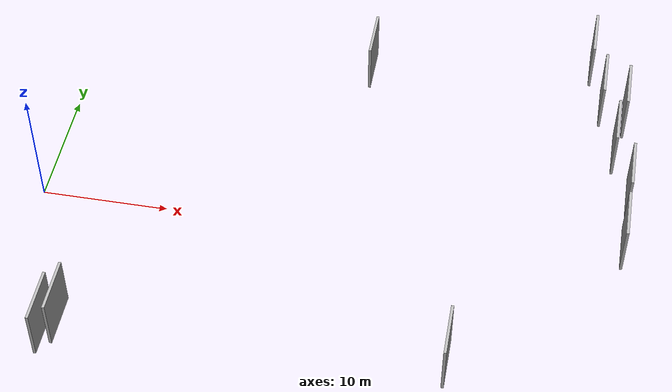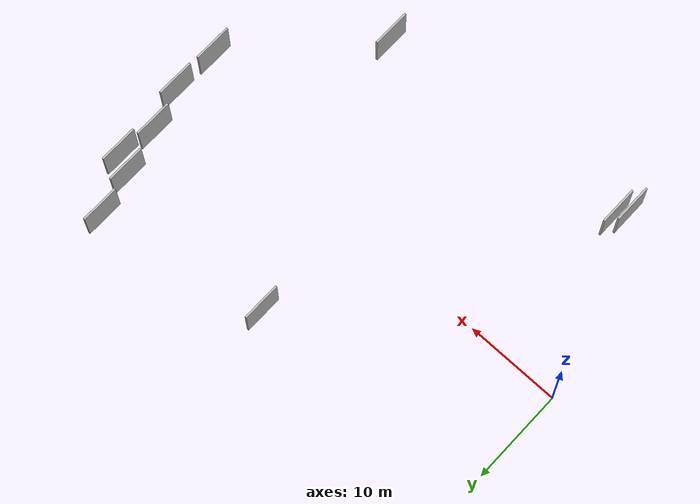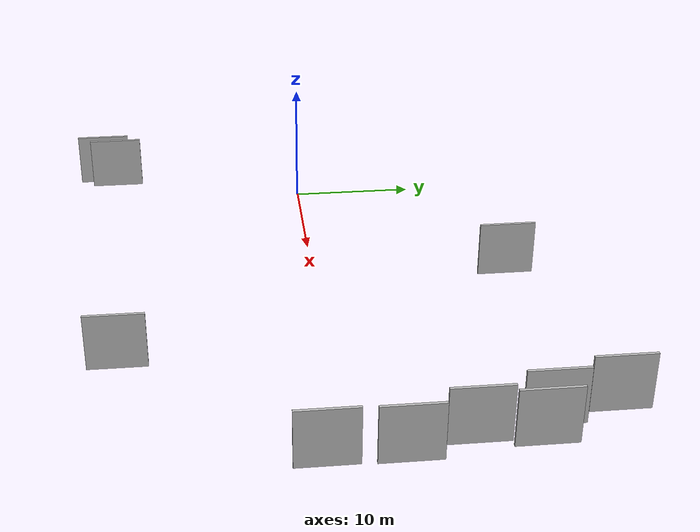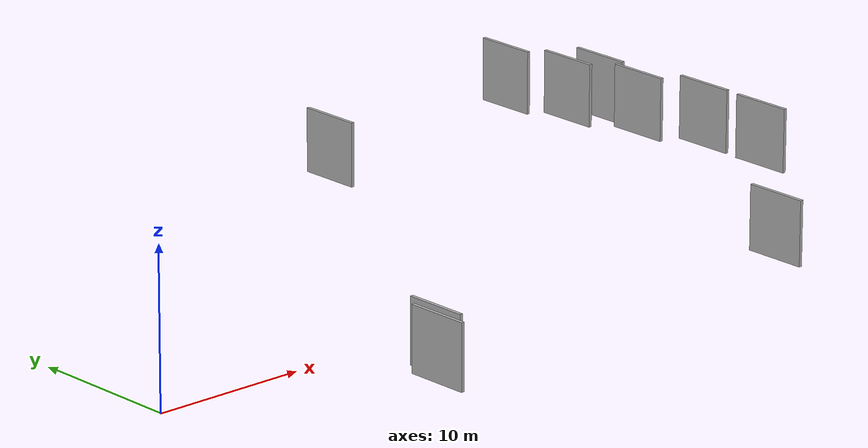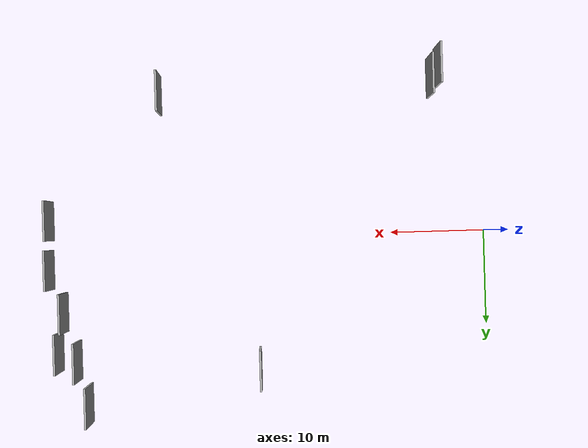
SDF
<sdf version="1.6">
 <world name="default">
  <scene>
   <sky><clouds><speed>12</speed></clouds></sky>
   <ambient>0.4 0.4 0.4 1</ambient>
   <background>0.7 0.7 0.7 1</background>
   <shadows>1</shadows>
  </scene>
  <gravity>0 0 -9.8066</gravity>
  <magnetic_field>6e-06 2.3e-05 -4.2e-05</magnetic_field>
  <physics default="0" name="default_physics" type="ode">
   <ode>
    <solver>
     <type>quick</type>
     <iters>10</iters>
     <sor>1.0</sor>
     <use_dynamic_moi_rescaling>0</use_dynamic_moi_rescaling>
    </solver>
    <constraints>
     <cfm>0</cfm>
     <erp>0.2</erp>
     <contact_max_correcting_vel>100</contact_max_correcting_vel>
     <contact_surface_layer>0.001</contact_surface_layer>
    </constraints>
   </ode>
   <max_step_size>0.004</max_step_size>
   <real_time_factor>1</real_time_factor>
   <real_time_update_rate>250</real_time_update_rate>
  </physics>
  <light name="sun" type="directional">
   <pose>0 0 10 0 0 0</pose>
   <diffuse>0.8 0.8 0.8 1</diffuse>
   <specular>0.2 0.2 0.2 1</specular>
   <attenuation>
    <range>1000</range>
    <constant>0.9</constant>
    <linear>0.01</linear>
    <quadratic>0.001</quadratic>
   </attenuation>
   <direction>-0.5 0.1 -0.9</direction>
  </light>
  <model name="grey_wall_1">
   <static>1</static>
   <pose>24.2069 13.2059 5.0 0.000000 0.000000 1.570796</pose>
   <link name="link">
    <pose>0 0 2.00 0 0 0</pose>
    <collision name="collision"><geometry><box><size>4.00 0.2 4.00</size></box></geometry></collision>
    <visual name="visual">
     <cast_shadows>0</cast_shadows>
     <geometry><box><size>4.00 0.2 4.00</size></box></geometry>
     <material>
      <script>
       <uri>model://HANNAS_wall/materials/scripts</uri>
       <uri>model://HANNAS_wall/materials/textures</uri>
       <name>vrc/HANNAS_wall</name>
      </script>
     </material>
    </visual>
   </link>
  </model>
  <model name="grey_wall_2">
   <static>1</static>
   <pose>42.4949 12.0493 5.0 0.000000 0.000000 1.570796</pose>
   <link name="link">
    <pose>0 0 2.00 0 0 0</pose>
    <collision name="collision"><geometry><box><size>4.00 0.2 4.00</size></box></geometry></collision>
    <visual name="visual">
     <cast_shadows>0</cast_shadows>
     <geometry><box><size>4.00 0.2 4.00</size></box></geometry>
     <material>
      <script>
       <uri>model://HANNAS_wall/materials/scripts</uri>
       <uri>model://HANNAS_wall/materials/textures</uri>
       <name>vrc/HANNAS_wall</name>
      </script>
     </material>
    </visual>
   </link>
  </model>
  <model name="grey_wall_3">
   <static>1</static>
   <pose>45.0876 2.8591 5.0 0.000000 0.000000 1.570796</pose>
   <link name="link">
    <pose>0 0 2.00 0 0 0</pose>
    <collision name="collision"><geometry><box><size>4.00 0.2 4.00</size></box></geometry></collision>
    <visual name="visual">
     <cast_shadows>0</cast_shadows>
     <geometry><box><size>4.00 0.2 4.00</size></box></geometry>
     <material>
      <script>
       <uri>model://HANNAS_wall/materials/scripts</uri>
       <uri>model://HANNAS_wall/materials/textures</uri>
       <name>vrc/HANNAS_wall</name>
      </script>
     </material>
    </visual>
   </link>
  </model>
  <model name="grey_wall_4">
   <static>1</static>
   <pose>5.7415 -16.5426 5.0 0.000000 0.000000 1.570796</pose>
   <link name="link">
    <pose>0 0 2.00 0 0 0</pose>
    <collision name="collision"><geometry><box><size>4.00 0.2 4.00</size></box></geometry></collision>
    <visual name="visual">
     <cast_shadows>0</cast_shadows>
     <geometry><box><size>4.00 0.2 4.00</size></box></geometry>
     <material>
      <script>
       <uri>model://HANNAS_wall/materials/scripts</uri>
       <uri>model://HANNAS_wall/materials/textures</uri>
       <name>vrc/HANNAS_wall</name>
      </script>
     </material>
    </visual>
   </link>
  </model>
  <model name="grey_wall_5">
   <static>1</static>
   <pose>45.0023 -2.0515 5.0 0.000000 0.000000 1.570796</pose>
   <link name="link">
    <pose>0 0 2.00 0 0 0</pose>
    <collision name="collision"><geometry><box><size>4.00 0.2 4.00</size></box></geometry></collision>
    <visual name="visual">
     <cast_shadows>0</cast_shadows>
     <geometry><box><size>4.00 0.2 4.00</size></box></geometry>
     <material>
      <script>
       <uri>model://HANNAS_wall/materials/scripts</uri>
       <uri>model://HANNAS_wall/materials/textures</uri>
       <name>vrc/HANNAS_wall</name>
      </script>
     </material>
    </visual>
   </link>
  </model>
  <model name="grey_wall_6">
   <static>1</static>
   <pose>41.4493 16.4476 5.0 0.000000 0.000000 1.570796</pose>
   <link name="link">
    <pose>0 0 2.00 0 0 0</pose>
    <collision name="collision"><geometry><box><size>4.00 0.2 4.00</size></box></geometry></collision>
    <visual name="visual">
     <cast_shadows>0</cast_shadows>
     <geometry><box><size>4.00 0.2 4.00</size></box></geometry>
     <material>
      <script>
       <uri>model://HANNAS_wall/materials/scripts</uri>
       <uri>model://HANNAS_wall/materials/textures</uri>
       <name>vrc/HANNAS_wall</name>
      </script>
     </material>
    </visual>
   </link>
  </model>
  <model name="grey_wall_7">
   <static>1</static>
   <pose>44.3408 11.1224 5.0 0.000000 0.000000 1.570796</pose>
   <link name="link">
    <pose>0 0 2.00 0 0 0</pose>
    <collision name="collision"><geometry><box><size>4.00 0.2 4.00</size></box></geometry></collision>
    <visual name="visual">
     <cast_shadows>0</cast_shadows>
     <geometry><box><size>4.00 0.2 4.00</size></box></geometry>
     <material>
      <script>
       <uri>model://HANNAS_wall/materials/scripts</uri>
       <uri>model://HANNAS_wall/materials/textures</uri>
       <name>vrc/HANNAS_wall</name>
      </script>
     </material>
    </visual>
   </link>
  </model>
  <model name="grey_wall_8">
   <static>1</static>
   <pose>43.7683 7.1631 5.0 0.000000 0.000000 1.570796</pose>
   <link name="link">
    <pose>0 0 2.00 0 0 0</pose>
    <collision name="collision"><geometry><box><size>4.00 0.2 4.00</size></box></geometry></collision>
    <visual name="visual">
     <cast_shadows>0</cast_shadows>
     <geometry><box><size>4.00 0.2 4.00</size></box></geometry>
     <material>
      <script>
       <uri>model://HANNAS_wall/materials/scripts</uri>
       <uri>model://HANNAS_wall/materials/textures</uri>
       <name>vrc/HANNAS_wall</name>
      </script>
     </material>
    </visual>
   </link>
  </model>
  <model name="grey_wall_9">
   <static>1</static>
   <pose>33.7089 -14.4961 5.0 0.000000 0.000000 1.570796</pose>
   <link name="link">
    <pose>0 0 2.00 0 0 0</pose>
    <collision name="collision"><geometry><box><size>4.00 0.2 4.00</size></box></geometry></collision>
    <visual name="visual">
     <cast_shadows>0</cast_shadows>
     <geometry><box><size>4.00 0.2 4.00</size></box></geometry>
     <material>
      <script>
       <uri>model://HANNAS_wall/materials/scripts</uri>
       <uri>model://HANNAS_wall/materials/textures</uri>
       <name>vrc/HANNAS_wall</name>
      </script>
     </material>
    </visual>
   </link>
  </model>
  <model name="grey_wall_10">
   <static>1</static>
   <pose>6.5593 -15.5110 5.0 0.000000 0.000000 1.570796</pose>
   <link name="link">
    <pose>0 0 2.00 0 0 0</pose>
    <collision name="collision"><geometry><box><size>4.00 0.2 4.00</size></box></geometry></collision>
    <visual name="visual">
     <cast_shadows>0</cast_shadows>
     <geometry><box><size>4.00 0.2 4.00</size></box></geometry>
     <material>
      <script>
       <uri>model://HANNAS_wall/materials/scripts</uri>
       <uri>model://HANNAS_wall/materials/textures</uri>
       <name>vrc/HANNAS_wall</name>
      </script>
     </material>
    </visual>
   </link>
  </model>
 </world>
</sdf>
